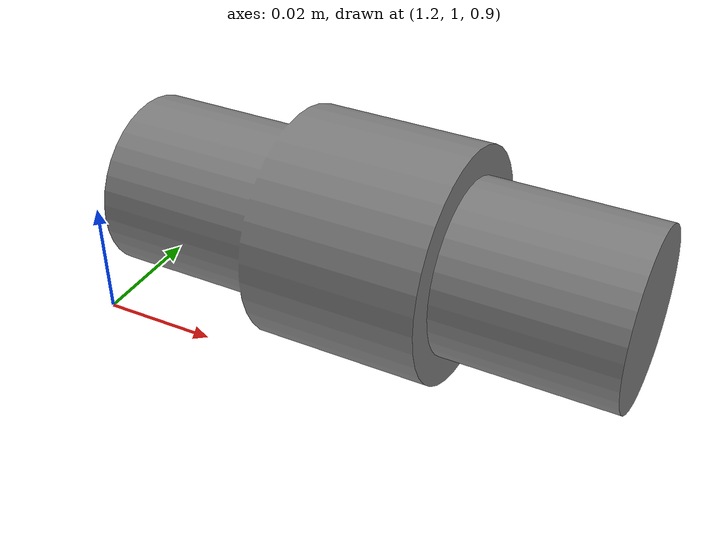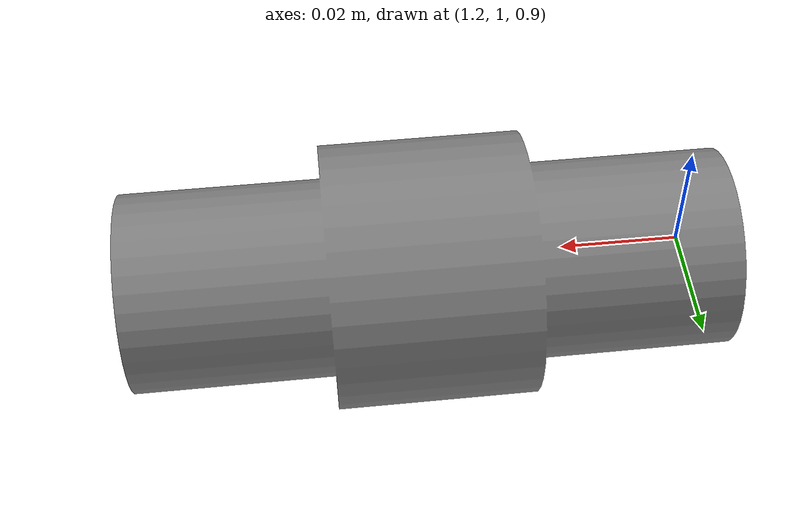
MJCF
<mujoco model="BolzenKlein-1">

  <asset>
    <mesh
      file="../../../../../assets/cranfield_assembly_benchmark/assets/BolzenKlein-1/BolzenKlein-1.obj"
      scale="0.001 0.001 0.001">
      <plugin instance="sdf" />
    </mesh>
  </asset>
  <worldbody>
    <body name="BolzenKlein-1" pos="1 1 1">
      <freejoint />
      <geom type="mesh" mesh="BolzenKlein-1" size="0.01">
        <plugin instance="sdf" />
      </geom>
    </body>
  </worldbody>
</mujoco>
